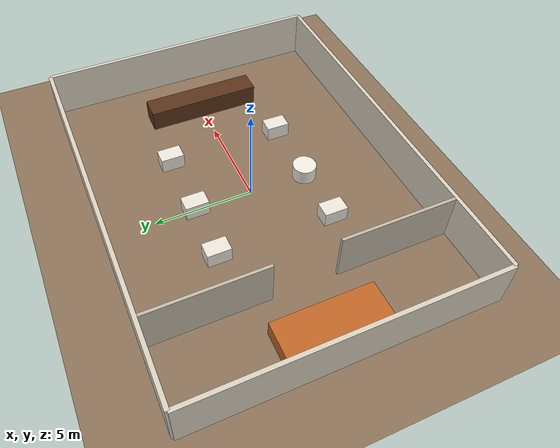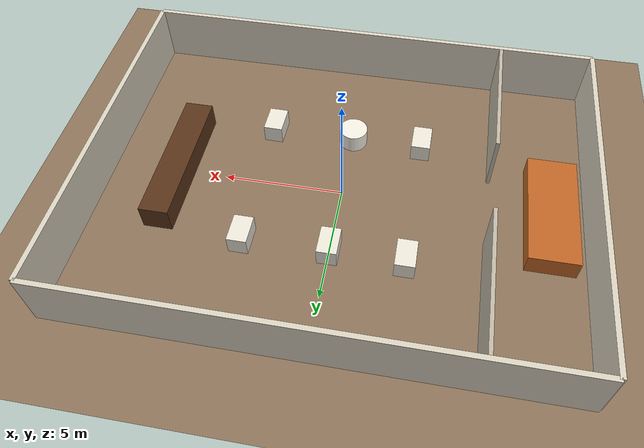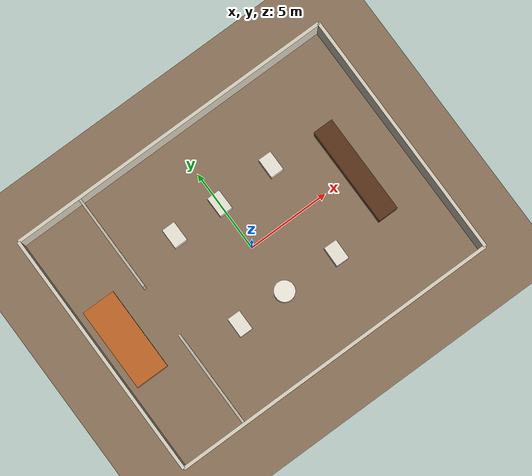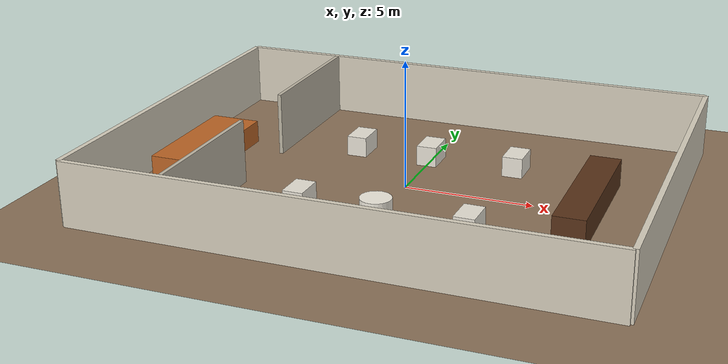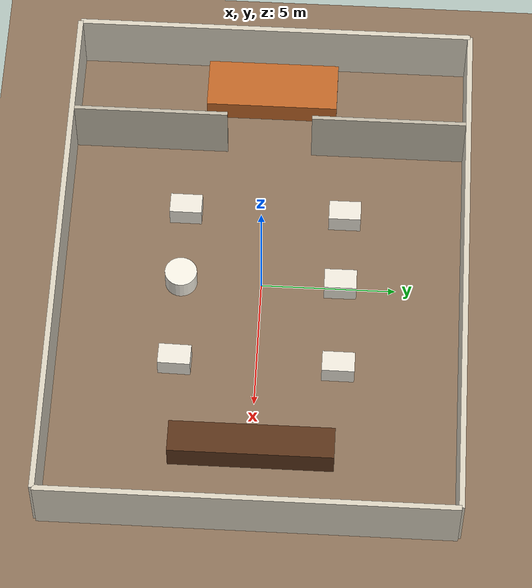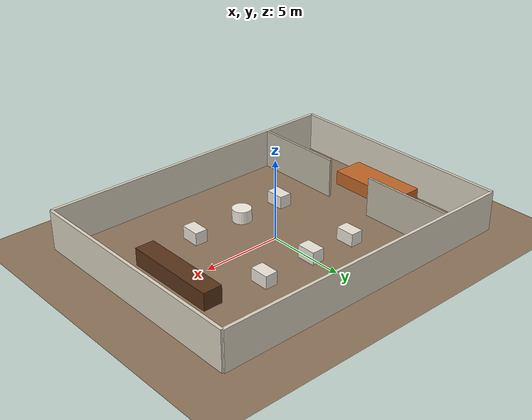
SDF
<sdf version="1.10">
 <world name="restaurant_world">
  <physics name="1ms" type="ignored">
   <max_step_size>0.004</max_step_size>
   <real_time_factor>1</real_time_factor>
   <real_time_update_rate>250</real_time_update_rate>
  </physics>
  <plugin name="gz::sim::systems::Physics" filename="gz-sim-physics-system"/>
  <plugin name="gz::sim::systems::SceneBroadcaster" filename="gz-sim-scene-broadcaster-system"/>
  <plugin name="gz::sim::systems::UserCommands" filename="gz-sim-user-commands-system"/>
  <plugin name="gz::sim::systems::Sensors" filename="gz-sim-sensors-system"/>
  <gravity>0 0 -9.8000000000000007</gravity>
  <magnetic_field>5.5644999999999998e-06 2.2875799999999999e-05 -4.2388400000000002e-05</magnetic_field>
  <atmosphere type="adiabatic"/>
  <scene><ambient>0.8 0.8 0.8 1</ambient><background>0.7 0.85 1.0 1</background><shadows>true</shadows></scene>
  <light type="directional" name="sun">
   <pose>0 0 10 0 0 0</pose>
   <diffuse>0.9 0.85 0.8 1</diffuse>
   <specular>0.3 0.3 0.3 1</specular>
   <direction>-0.5 0.5 -1.0</direction>
  </light>
  <model name="ground_plane">
   <static>true</static>
   <link name="link">
    <collision name="collision">
     <geometry><plane><normal>0 0 1</normal><size>20 15</size></plane></geometry>
    </collision>
    <visual name="visual">
     <geometry><plane><normal>0 0 1</normal><size>20 15</size></plane></geometry>
     <material>
      <ambient>0.550000012 0.449999988 0.349999994 1</ambient>
      <diffuse>0.550000012 0.449999988 0.349999994 1</diffuse>
     </material>
    </visual>
    <inertial>
     <mass>1</mass>
     <inertia><ixx>1</ixx><ixy>0</ixy><ixz>0</ixz><iyy>1</iyy><iyz>0</iyz><izz>1</izz></inertia>
    </inertial>
   </link>
  </model>
  <model name="outer_walls">
   <static>true</static>
   <link name="wall_north">
    <pose>0 7.5 1.25 0 0 0</pose>
    <collision name="c"><geometry><box><size>20 0.20000000000000001 2.5</size></box></geometry></collision>
    <visual name="v">
     <geometry><box><size>20 0.20000000000000001 2.5</size></box></geometry>
     <material>
      <ambient>0.850000024 0.819999993 0.75 1</ambient>
      <diffuse>0.850000024 0.819999993 0.75 1</diffuse>
     </material>
    </visual>
    <inertial>
     <mass>1</mass>
     <inertia><ixx>1</ixx><ixy>0</ixy><ixz>0</ixz><iyy>1</iyy><iyz>0</iyz><izz>1</izz></inertia>
    </inertial>
   </link>
   <link name="wall_south">
    <pose>0 -7.5 1.25 0 0 0</pose>
    <collision name="c"><geometry><box><size>20 0.20000000000000001 2.5</size></box></geometry></collision>
    <visual name="v">
     <geometry><box><size>20 0.20000000000000001 2.5</size></box></geometry>
     <material>
      <ambient>0.850000024 0.819999993 0.75 1</ambient>
      <diffuse>0.850000024 0.819999993 0.75 1</diffuse>
     </material>
    </visual>
    <inertial>
     <mass>1</mass>
     <inertia><ixx>1</ixx><ixy>0</ixy><ixz>0</ixz><iyy>1</iyy><iyz>0</iyz><izz>1</izz></inertia>
    </inertial>
   </link>
   <link name="wall_east">
    <pose>10 0 1.25 0 0 1.5708000000000006</pose>
    <collision name="c"><geometry><box><size>15 0.20000000000000001 2.5</size></box></geometry></collision>
    <visual name="v">
     <geometry><box><size>15 0.20000000000000001 2.5</size></box></geometry>
     <material>
      <ambient>0.850000024 0.819999993 0.75 1</ambient>
      <diffuse>0.850000024 0.819999993 0.75 1</diffuse>
     </material>
    </visual>
    <inertial>
     <mass>1</mass>
     <inertia><ixx>1</ixx><ixy>0</ixy><ixz>0</ixz><iyy>1</iyy><iyz>0</iyz><izz>1</izz></inertia>
    </inertial>
   </link>
   <link name="wall_west">
    <pose>-10 0 1.25 0 0 1.5708000000000006</pose>
    <collision name="c"><geometry><box><size>15 0.20000000000000001 2.5</size></box></geometry></collision>
    <visual name="v">
     <geometry><box><size>15 0.20000000000000001 2.5</size></box></geometry>
     <material>
      <ambient>0.850000024 0.819999993 0.75 1</ambient>
      <diffuse>0.850000024 0.819999993 0.75 1</diffuse>
     </material>
    </visual>
    <inertial>
     <mass>1</mass>
     <inertia><ixx>1</ixx><ixy>0</ixy><ixz>0</ixz><iyy>1</iyy><iyz>0</iyz><izz>1</izz></inertia>
    </inertial>
   </link>
  </model>
  <model name="kitchen_partition">
   <static>true</static>
   <link name="part_left">
    <pose>-6 -4.5 1.25 0 0 1.5708</pose>
    <collision name="c">
     <geometry><box><size>5.7999999999999998 0.14999999999999999 2.5</size></box></geometry>
    </collision>
    <visual name="v">
     <geometry><box><size>5.7999999999999998 0.14999999999999999 2.5</size></box></geometry>
     <material>
      <ambient>0.75 0.720000029 0.649999976 1</ambient>
      <diffuse>0.75 0.720000029 0.649999976 1</diffuse>
     </material>
    </visual>
    <inertial>
     <mass>1</mass>
     <inertia><ixx>1</ixx><ixy>0</ixy><ixz>0</ixz><iyy>1</iyy><iyz>0</iyz><izz>1</izz></inertia>
    </inertial>
   </link>
   <link name="part_right">
    <pose>-5.999999999999992 4.4999999999999982 1.25 0 0 1.5707999999999998</pose>
    <collision name="c">
     <geometry><box><size>5.7999999999999998 0.14999999999999999 2.5</size></box></geometry>
    </collision>
    <visual name="v">
     <geometry><box><size>5.7999999999999998 0.14999999999999999 2.5</size></box></geometry>
     <material>
      <ambient>0.75 0.720000029 0.649999976 1</ambient>
      <diffuse>0.75 0.720000029 0.649999976 1</diffuse>
     </material>
    </visual>
    <inertial>
     <mass>1</mass>
     <inertia><ixx>1</ixx><ixy>0</ixy><ixz>0</ixz><iyy>1</iyy><iyz>0</iyz><izz>1</izz></inertia>
    </inertial>
   </link>
   <pose>-4.4408920985006262e-15 6.2172489379008766e-15 0 0 0 7.7715611723760958e-16</pose>
  </model>
  <model name="kitchen_counter">
   <static>true</static>
   <pose>-8.5 0 0.45000000000000001 0 0 0</pose>
   <link name="link">
    <collision name="col"><geometry><box><size>2 5 0.90000000000000002</size></box></geometry></collision>
    <visual name="vis">
     <geometry><box><size>2 5 0.90000000000000002</size></box></geometry>
     <material>
      <ambient>0.75 0.400000006 0.150000006 1</ambient>
      <diffuse>0.75 0.400000006 0.150000006 1</diffuse>
     </material>
    </visual>
    <inertial>
     <mass>1</mass>
     <inertia><ixx>1</ixx><ixy>0</ixy><ixz>0</ixz><iyy>1</iyy><iyz>0</iyz><izz>1</izz></inertia>
    </inertial>
   </link>
  </model>
  <model name="bar_counter">
   <static>true</static>
   <pose>7 0 0.55000000000000004 0 0 0</pose>
   <link name="link">
    <collision name="col"><geometry><box><size>1.2 6 1.1000000000000001</size></box></geometry></collision>
    <visual name="vis">
     <geometry><box><size>1.2 6 1.1000000000000001</size></box></geometry>
     <material>
      <ambient>0.349999994 0.200000003 0.100000001 1</ambient>
      <diffuse>0.349999994 0.200000003 0.100000001 1</diffuse>
     </material>
    </visual>
    <inertial>
     <mass>1</mass>
     <inertia><ixx>1</ixx><ixy>0</ixy><ixz>0</ixz><iyy>1</iyy><iyz>0</iyz><izz>1</izz></inertia>
    </inertial>
   </link>
  </model>
  <model name="table_1">
   <static>true</static>
   <pose>0 2.9444301128387451 0.40000000596046448 0 0 -1.5664792217256245</pose>
   <link name="link">
    <collision name="col">
     <geometry><box><size>1.2 0.80000000000000004 0.80000000000000004</size></box></geometry>
    </collision>
    <visual name="vis">
     <geometry><box><size>1.2 0.80000000000000004 0.80000000000000004</size></box></geometry>
     <material>
      <ambient>0.920000017 0.899999976 0.850000024 1</ambient>
      <diffuse>0.920000017 0.899999976 0.850000024 1</diffuse>
     </material>
    </visual>
    <inertial>
     <mass>1</mass>
     <inertia><ixx>1</ixx><ixy>0</ixy><ixz>0</ixz><iyy>1</iyy><iyz>0</iyz><izz>1</izz></inertia>
    </inertial>
   </link>
  </model>
  <model name="table_2">
   <static>true</static>
   <pose>3.5 3 0.40000000596046448 0 0 -1.5768895899653073</pose>
   <link name="link">
    <collision name="col">
     <geometry><box><size>1.2 0.80000000000000004 0.80000000000000004</size></box></geometry>
    </collision>
    <visual name="vis">
     <geometry><box><size>1.2 0.80000000000000004 0.80000000000000004</size></box></geometry>
     <material>
      <ambient>0.920000017 0.899999976 0.850000024 1</ambient>
      <diffuse>0.920000017 0.899999976 0.850000024 1</diffuse>
     </material>
    </visual>
    <inertial>
     <mass>1</mass>
     <inertia><ixx>1</ixx><ixy>0</ixy><ixz>0</ixz><iyy>1</iyy><iyz>0</iyz><izz>1</izz></inertia>
    </inertial>
   </link>
  </model>
  <model name="table_3">
   <static>true</static>
   <pose>-3 3 0.40000000596046448 0 0 -1.5701131263666221</pose>
   <link name="link">
    <collision name="col">
     <geometry><box><size>1.2 0.80000000000000004 0.80000000000000004</size></box></geometry>
    </collision>
    <visual name="vis">
     <geometry><box><size>1.2 0.80000000000000004 0.80000000000000004</size></box></geometry>
     <material>
      <ambient>0.920000017 0.899999976 0.850000024 1</ambient>
      <diffuse>0.920000017 0.899999976 0.850000024 1</diffuse>
     </material>
    </visual>
    <inertial>
     <mass>1</mass>
     <inertia><ixx>1</ixx><ixy>0</ixy><ixz>0</ixz><iyy>1</iyy><iyz>0</iyz><izz>1</izz></inertia>
    </inertial>
   </link>
  </model>
  <model name="table_4">
   <static>true</static>
   <pose>-3 -3 0.40000000596046448 0 0 -1.5771314302890558</pose>
   <link name="link">
    <collision name="col">
     <geometry><box><size>1.2 0.80000000000000004 0.80000000000000004</size></box></geometry>
    </collision>
    <visual name="vis">
     <geometry><box><size>1.2 0.80000000000000004 0.80000000000000004</size></box></geometry>
     <material>
      <ambient>0.920000017 0.899999976 0.850000024 1</ambient>
      <diffuse>0.920000017 0.899999976 0.850000024 1</diffuse>
     </material>
    </visual>
    <inertial>
     <mass>1</mass>
     <inertia><ixx>1</ixx><ixy>0</ixy><ixz>0</ixz><iyy>1</iyy><iyz>0</iyz><izz>1</izz></inertia>
    </inertial>
   </link>
  </model>
  <model name="table_5">
   <static>true</static>
   <pose>3.5 -3 0.40000000596046448 0 0 -1.5910499193913308</pose>
   <link name="link">
    <collision name="col">
     <geometry><box><size>1.2 0.80000000000000004 0.80000000000000004</size></box></geometry>
    </collision>
    <visual name="vis">
     <geometry><box><size>1.2 0.80000000000000004 0.80000000000000004</size></box></geometry>
     <material>
      <ambient>0.920000017 0.899999976 0.850000024 1</ambient>
      <diffuse>0.920000017 0.899999976 0.850000024 1</diffuse>
     </material>
    </visual>
    <inertial>
     <mass>1</mass>
     <inertia><ixx>1</ixx><ixy>0</ixy><ixz>0</ixz><iyy>1</iyy><iyz>0</iyz><izz>1</izz></inertia>
    </inertial>
   </link>
  </model>
  <model name="table_6">
   <static>true</static>
   <pose>0 -2.9966409206390381 0.40000000596046448 0 0 0</pose>
   <link name="link">
    <collision name="col">
     <geometry>
      <cylinder><radius>0.59999999999999998</radius><length>0.80000000000000004</length></cylinder>
     </geometry>
    </collision>
    <visual name="vis">
     <geometry>
      <cylinder><radius>0.59999999999999998</radius><length>0.80000000000000004</length></cylinder>
     </geometry>
     <material>
      <ambient>0.949999988 0.930000007 0.879999995 1</ambient>
      <diffuse>0.949999988 0.930000007 0.879999995 1</diffuse>
     </material>
    </visual>
    <inertial>
     <mass>1</mass>
     <inertia><ixx>1</ixx><ixy>0</ixy><ixz>0</ixz><iyy>1</iyy><iyz>0</iyz><izz>1</izz></inertia>
    </inertial>
   </link>
  </model>
 </world>
</sdf>
